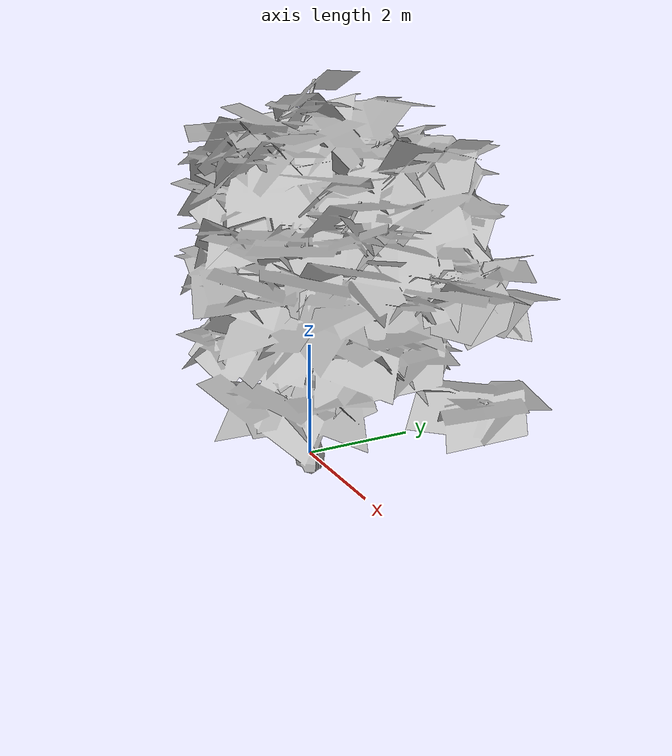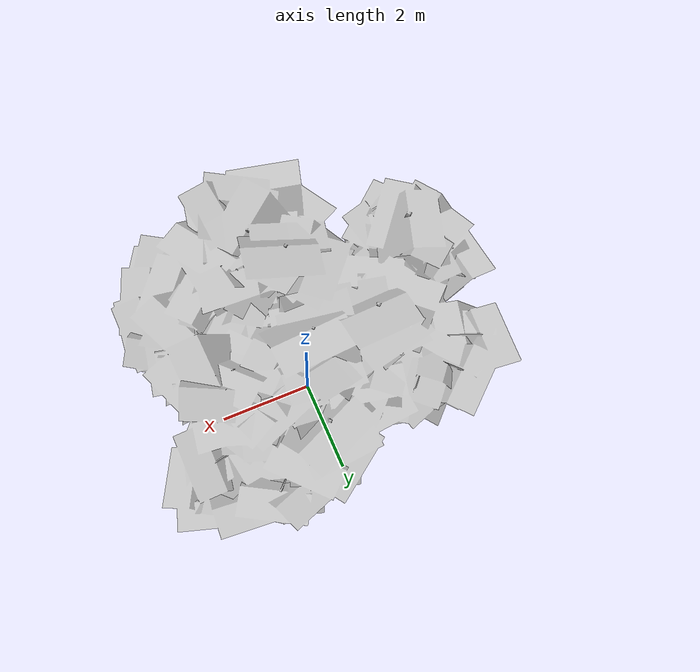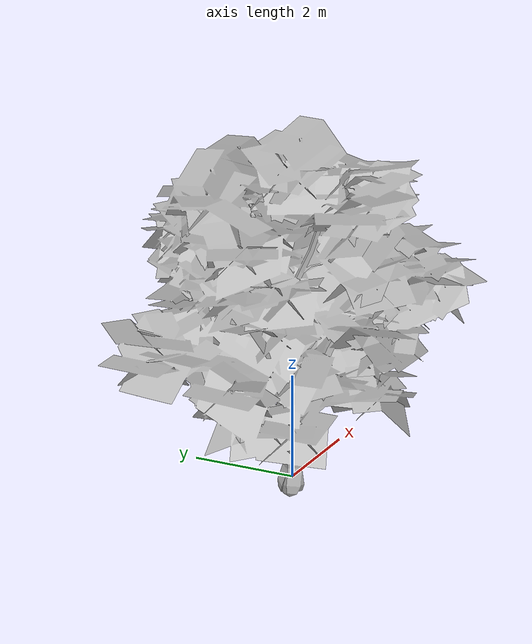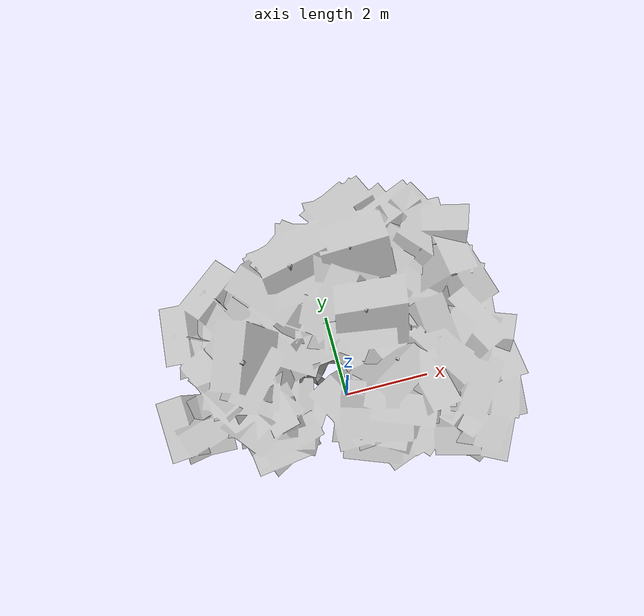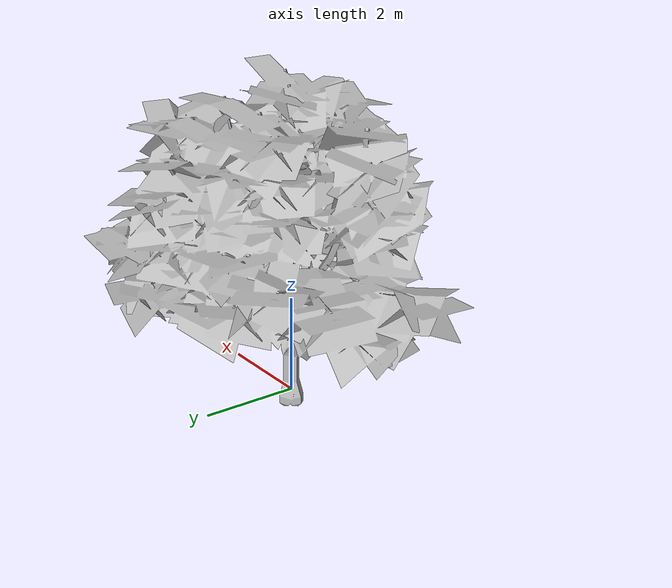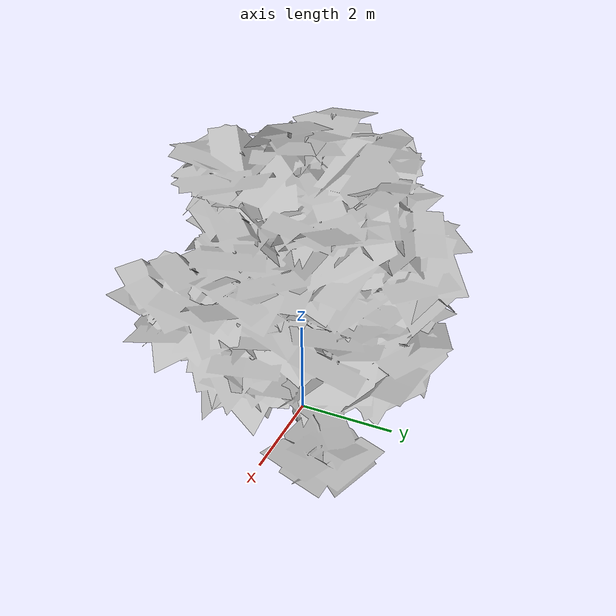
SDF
<?xml version="1.0" ?>
<sdf version="1.5">
  <model name="Tree 3">
     <static>true</static>
    <pose frame=''>0 0 0 1.57079 0 0</pose>
    <link name="link">
      <pose frame=''>0 0 0 0 0 0</pose>
      <collision name="collision">
        <geometry>
          <mesh>
            <scale>5 5 5</scale>
            <uri>model://tree_3/meshes/tree_3.obj</uri>
          </mesh>
        </geometry>
      </collision>
      <visual name="visual">
        <geometry>
          <mesh>

            <scale>5 5 5</scale>
            <uri>model://tree_3/meshes/tree_3.obj</uri>
          </mesh>
        </geometry>
      </visual>
    </link>
  </model>
</sdf>
